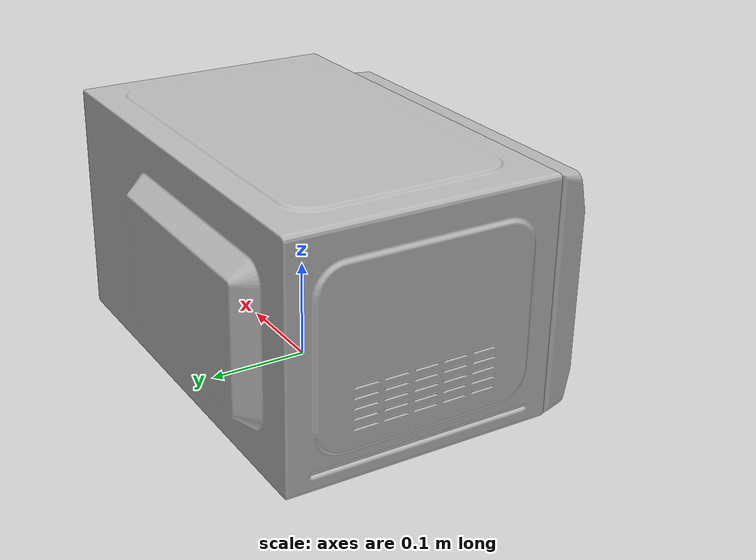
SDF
<sdf version='1.6'>
  <model name='microwave_oven'>
    <link name='base_link'>
      <pose frame=''>0 0 0 0 -0 0</pose>
      <inertial>
        <pose frame=''>-0.003499 0.0063 0.095793 0 -0 0</pose>
        <mass>10.69</mass>
        <inertia>
          <ixx>0.15798</ixx>
          <ixy>0.002699</ixy>
          <ixz>0.0025714</ixz>
          <iyy>0.31998</iyy>
          <iyz>-0.0019679</iyz>
          <izz>0.30475</izz>
        </inertia>
      </inertial>
      <collision name='base_link_collision'>
        <pose frame=''>0 0 0 0 -0 0</pose>
        <geometry>
          <mesh>
            <scale>1 1 1</scale>
            <uri>model://microwave_oven/meshes/base_link.STL</uri>
          </mesh>
        </geometry>
      </collision>
      <visual name='base_link_visual'>
        <pose frame=''>0 0 0 0 -0 0</pose>
        <geometry>
          <mesh>
            <scale>1 1 1</scale>
            <uri>model://microwave_oven/meshes/base_link.STL</uri>
          </mesh>
        </geometry>
      </visual>
    </link>
    <link name='door_link'>
      <pose frame=''>-0.2115 -0.13648 0.002131 1.5708 -0 0</pose>
      <inertial>
        <pose frame=''>0.18216 0.11795 0.017746 0 -0 0</pose>
        <mass>1.117</mass>
        <inertia>
          <ixx>0.0067183</ixx>
          <ixy>-1.793e-07</ixy>
          <ixz>-0.00018641</ixz>
          <iyy>0.015795</iyy>
          <iyz>-8.4864e-08</iyz>
          <izz>0.022237</izz>
        </inertia>
      </inertial>
      <collision name='door_link_collision'>
        <pose frame=''>0 0 0 0 -0 0</pose>
        <geometry>
          <mesh>
            <scale>1 1 1</scale>
            <uri>model://microwave_oven/meshes/door_link.STL</uri>
          </mesh>
        </geometry>
      </collision>
      <visual name='door_link_visual'>
        <pose frame=''>0 0 0 0 -0 0</pose>
        <geometry>
          <mesh>
            <scale>1 1 1</scale>
            <uri>model://microwave_oven/meshes/door_link.STL</uri>
          </mesh>
        </geometry>
      </visual>
    </link>
    <joint name='door_joint' type='revolute'>
      <child>door_link</child>
      <parent>base_link</parent>
      <axis>
        <xyz>0 0 1</xyz>
        <limit>
          <lower>-1.5708</lower>
          <upper>0</upper>
          <effort>30</effort>
          <velocity>1.0</velocity>
        </limit>
        <dynamics>
          <damping>0.5</damping>
          <friction>5</friction>
          <spring_reference>0</spring_reference>
          <spring_stiffness>0</spring_stiffness>
        </dynamics>
        <use_parent_model_frame>1</use_parent_model_frame>
      </axis>
    </joint>
  </model>
</sdf>
